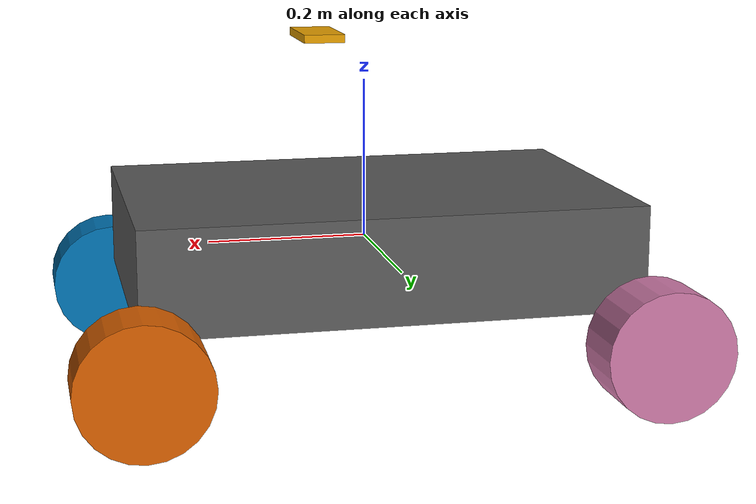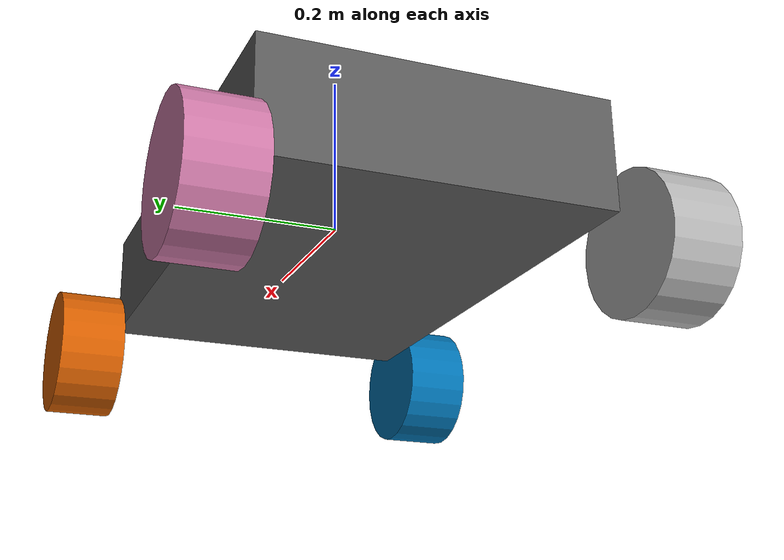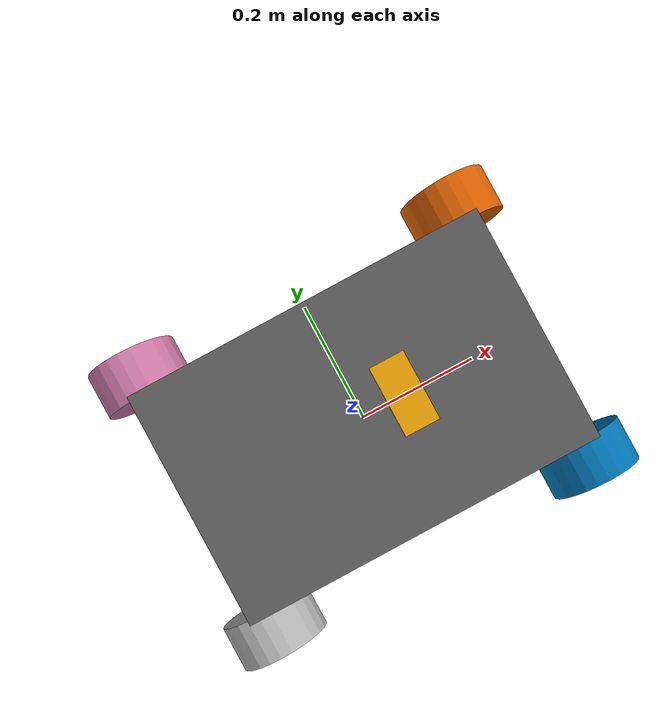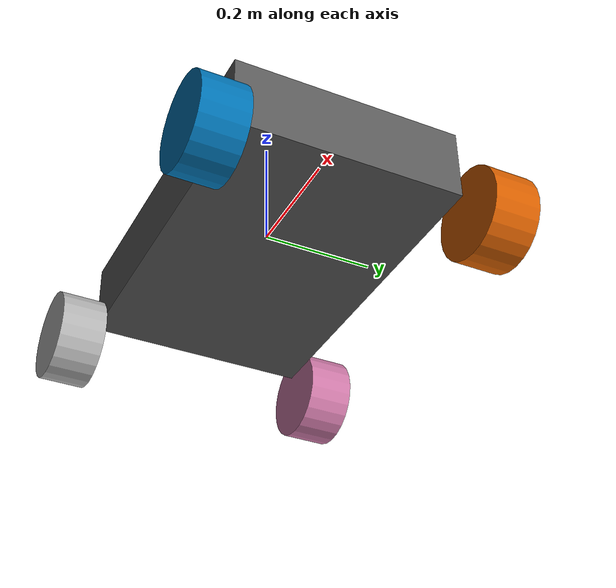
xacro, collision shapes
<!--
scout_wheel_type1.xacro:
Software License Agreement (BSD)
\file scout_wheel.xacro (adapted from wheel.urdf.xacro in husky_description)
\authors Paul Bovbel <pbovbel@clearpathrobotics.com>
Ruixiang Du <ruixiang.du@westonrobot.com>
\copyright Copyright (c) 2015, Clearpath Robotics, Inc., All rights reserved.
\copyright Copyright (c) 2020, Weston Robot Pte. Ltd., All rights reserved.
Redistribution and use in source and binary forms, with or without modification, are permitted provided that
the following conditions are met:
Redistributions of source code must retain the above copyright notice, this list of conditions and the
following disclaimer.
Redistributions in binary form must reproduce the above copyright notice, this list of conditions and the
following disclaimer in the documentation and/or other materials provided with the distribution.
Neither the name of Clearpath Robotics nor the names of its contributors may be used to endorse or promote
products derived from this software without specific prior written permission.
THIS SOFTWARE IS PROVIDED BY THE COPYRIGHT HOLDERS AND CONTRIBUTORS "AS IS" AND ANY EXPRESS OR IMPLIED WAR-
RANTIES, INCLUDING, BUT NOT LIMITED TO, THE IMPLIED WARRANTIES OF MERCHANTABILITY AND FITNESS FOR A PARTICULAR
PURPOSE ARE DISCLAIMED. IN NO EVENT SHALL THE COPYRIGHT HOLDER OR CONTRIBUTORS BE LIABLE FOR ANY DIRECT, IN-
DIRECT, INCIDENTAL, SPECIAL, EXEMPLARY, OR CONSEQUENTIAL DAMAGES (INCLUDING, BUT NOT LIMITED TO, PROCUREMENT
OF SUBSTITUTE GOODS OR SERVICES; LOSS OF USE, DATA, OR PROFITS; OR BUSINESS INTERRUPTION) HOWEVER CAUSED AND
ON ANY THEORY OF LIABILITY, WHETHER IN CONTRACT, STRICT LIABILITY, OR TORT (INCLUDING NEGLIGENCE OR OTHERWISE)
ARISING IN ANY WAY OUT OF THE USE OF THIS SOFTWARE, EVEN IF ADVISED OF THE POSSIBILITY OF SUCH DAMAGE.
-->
<?xml version="1.0"?>

<robot name="scout_mini_real"
    xmlns:xacro="http://ros.org/wiki/xacro">

    <xacro:arg name="robot_namespace" default="/" />

    <xacro:include filename="$(find scout_description)/urdf/scout_wheel_type1.xacro" />
    <xacro:include filename="$(find scout_description)/urdf/scout_wheel_type2.xacro" />
    <xacro:include filename="$(find scout_description)/urdf/gazebo_real.xacro" />

    <!-- Variables -->
    <xacro:property name="M_PI" value="3.14159"/>

    <!-- Vehicle Geometries - real Scout Mini values, see header -->
    <xacro:property name="base_x_size" value="0.612" />
    <xacro:property name="base_y_size" value="0.400" />  <!-- approximate, see header -->
    <xacro:property name="base_z_size" value="0.130" />

    <xacro:property name="wheelbase" value="0.615" />
    <xacro:property name="track" value="0.49" />
    <xacro:property name="wheel_vertical_offset" value="-0.100" />

    <xacro:property name="wheel_length" value="0.08" />
    <xacro:property name="wheel_radius" value="0.08" />

    <!-- Base link -->
    <link name="base_link">
        <visual>
            <origin xyz="0 0 0" rpy="0 0 0" />
            <geometry>
                <box size="${base_x_size} ${base_y_size} ${base_z_size}"/>
            </geometry>
            <material name="scout_body_gray">
                <color rgba="0.35 0.35 0.35 1.0"/>
            </material>
        </visual>
        <collision>
            <origin xyz="0 0 0" rpy="0 0 0" />
            <geometry>
                <box size="${base_x_size} ${base_y_size} ${base_z_size}"/>
            </geometry>
        </collision>
    </link>

    <link name="base_footprint"/>

    <joint name="base_footprint_joint" type="fixed">
        <origin xyz="0 0 ${wheel_vertical_offset - wheel_radius}" rpy="0 0 0" />
        <parent link="base_link" />
        <child link="base_footprint" />
    </joint>

    <!-- Inertia: solid-box approximation, mass = 24.5kg midpoint of confirmed
         23-26kg range minus 4x1.5kg placeholder wheel mass (matches
         scout_mini.urdf's own reasoning) = 18.5kg body -->
    <link name="inertial_link">
        <inertial>
            <mass value="18.5" />
            <origin xyz="0.0 0.0 0.0" />
            <inertia ixx="0.27272" ixy="0" ixz="0" iyy="0.60348" iyz="0" izz="0.82409" />
        </inertial>
    </link>

    <joint name="inertial_joint" type="fixed">
        <origin xyz="0 0 0" rpy="0 0 0" />
        <parent link="base_link" />
        <child link="inertial_link" />
    </joint>

    <!-- Scout wheel macros -->
    <!-- wheel labeled from 0 to 3, counter-clockwise, starting from front right wheel -->
    <xacro:scout_wheel_type1 wheel_prefix="front_right">
        <origin xyz="${wheelbase/2} ${-track/2} ${wheel_vertical_offset}" rpy="0 0 0" />
    </xacro:scout_wheel_type1>
    <xacro:scout_wheel_type2 wheel_prefix="front_left">
        <origin xyz="${wheelbase/2} ${track/2} ${wheel_vertical_offset}" rpy="0 0 0" />
    </xacro:scout_wheel_type2>
    <xacro:scout_wheel_type1 wheel_prefix="rear_left">
        <origin xyz="${-wheelbase/2} ${track/2} ${wheel_vertical_offset}" rpy="0 0 0" />
    </xacro:scout_wheel_type1>
    <xacro:scout_wheel_type2 wheel_prefix="rear_right">
        <origin xyz="${-wheelbase/2} ${-track/2} ${wheel_vertical_offset}" rpy="0 0 0" />
    </xacro:scout_wheel_type2>

</robot>

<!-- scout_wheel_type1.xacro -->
<robot xmlns:xacro="http://ros.org/wiki/xacro" name="scout_wheel">

    <xacro:macro name="scout_wheel_type1" params="wheel_prefix *joint_pose">
        <link name="${wheel_prefix}_wheel_link">
            <inertial>
                <mass value="8" />
                <origin xyz="0 0 0" />
                <inertia ixx="0.1171" ixy="0" ixz="0" iyy="0.1361" iyz="0" izz="0.1171" />
            </inertial>
            <visual>
                <origin xyz="0 0 0" rpy="0 0 0" />
                <geometry>
                    <mesh filename="file://$(find scout_description)/meshes/wheel_type1.dae" />
                </geometry>
            </visual>
            <collision>
                <origin xyz="0 0 0" rpy="${M_PI/2} 0 0" />
                <geometry>
                    <cylinder length="${wheel_length}" radius="${wheel_radius}" />
                </geometry>
                     <contact>
                         <ode>
                        <min_depth>0.001</min_depth>
                         </ode>
                    </contact>
            </collision>
        </link>

        <joint name="${wheel_prefix}_wheel" type="continuous">
            <parent link="base_link"/>
            <child link="${wheel_prefix}_wheel_link"/>
            <xacro:insert_block name="joint_pose"/>
            <axis xyz="0 -1 0" rpy="0 0 0" />
            <dynamics damping="0.0" friction="20"/>
        </joint>
    </xacro:macro>

</robot>

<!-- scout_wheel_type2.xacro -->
<robot xmlns:xacro="http://ros.org/wiki/xacro" name="scout_wheel">

    <xacro:macro name="scout_wheel_type2" params="wheel_prefix *joint_pose">
        <link name="${wheel_prefix}_wheel_link">
            <inertial>
                <mass value="8" />
                <origin xyz="0 0 0" />
                <inertia ixx="0.1171" ixy="0" ixz="0" iyy="0.1361" iyz="0" izz="0.1171" />
            </inertial>
            <visual>
                <origin xyz="0 0 0" rpy="0 0 0" />
                <geometry>
                    <mesh filename="file://$(find scout_description)/meshes/wheel_type1.dae" />
                </geometry>
            </visual>
            <collision>
                <origin xyz="0 0 0" rpy="${M_PI/2} 0 0" />
                <geometry>
                    <cylinder length="${wheel_length}" radius="${wheel_radius}" />
                </geometry>
                    <contact>
                         <ode>
                        <min_depth>0.001</min_depth>
                         </ode>
                    </contact>
            </collision>
        </link>

        <joint name="${wheel_prefix}_wheel" type="continuous">
            <parent link="base_link"/>
            <child link="${wheel_prefix}_wheel_link"/>
            <xacro:insert_block name="joint_pose"/>
            <axis xyz="0 1 0" rpy="0 0 0" />
            <dynamics damping="0.0" friction="20"/>
        </joint>
    </xacro:macro>

</robot>

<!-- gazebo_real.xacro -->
<robot xmlns:xacro="http://ros.org/wiki/xacro">

    <gazebo>
        <plugin filename="gz-sim-sensors-system" name="gz::sim::systems::Sensors">
            <render_engine>ogre2</render_engine>
        </plugin>
        <plugin filename="gz-sim-diff-drive-system" name="gz::sim::systems::DiffDrive">
            <left_joint>front_left_wheel</left_joint>
            <left_joint>rear_left_wheel</left_joint>
            <right_joint>front_right_wheel</right_joint>
            <right_joint>rear_right_wheel</right_joint>
            <wheel_separation>0.576</wheel_separation>
            <wheel_radius>0.08</wheel_radius>
            <topic>cmd_vel</topic>
            <odom_publish_frequency>50</odom_publish_frequency>
            <odom_topic>odom</odom_topic>
            <frame_id>odom</frame_id>
            <child_frame_id>base_link</child_frame_id>
            <max_linear_acceleration>1.0</max_linear_acceleration>
            <min_linear_acceleration>-1.0</min_linear_acceleration>
            <max_angular_acceleration>1.0</max_angular_acceleration>
            <min_angular_acceleration>-1.0</min_angular_acceleration>
            <max_wheel_torque>20</max_wheel_torque>
        </plugin>
        <plugin filename="gz-sim-odometry-publisher-system" name="gz::sim::systems::OdometryPublisher">
            <odom_frame>ground_truth_odom</odom_frame>
            <robot_base_frame>base_link</robot_base_frame>
            <odom_publish_frequency>50</odom_publish_frequency>
            <odom_topic>ground_truth_odom</odom_topic>
            <dimensions>2</dimensions>
            <tf_topic>tf</tf_topic>
        </plugin>
        <plugin filename="gz-sim-joint-state-publisher-system" name="gz::sim::systems::JointStatePublisher">
            <topic>joint_states</topic>
        </plugin>
    </gazebo>

    <link name="zed_x_camera">
        <collision>
            <origin xyz="0 0 0" rpy="0 0 0"/>
            <geometry><box size="0.05 0.1 0.01"/></geometry>
        </collision>
        <inertial>
            <origin xyz="0 0 0" rpy="0 0 0"/>
            <mass value="0.01"/>
            <inertia ixx="0.01" ixy="0" ixz="0" iyy="0.01" iyz="0" izz="0.01"/>
        </inertial>
    </link>

    <joint name="base_to_zed_x_camera" type="fixed">
        <parent link="base_link"/>
        <child link="zed_x_camera"/>
        <origin xyz="0.06 0.0 0.257" rpy="0 0 0"/>
    </joint>

    <gazebo reference="base_to_zed_x_camera">
        <preserveFixedJoint>true</preserveFixedJoint>
    </gazebo>

    <gazebo reference="zed_x_camera">
        <sensor name="zed_x_camera" type="depth_camera">
            <always_on>1</always_on>
            <update_rate>15</update_rate>
            <visualize>true</visualize>
            <topic>zed_x_camera</topic>
            <camera>
                <horizontal_fov>1.7582794098833934</horizontal_fov>
                <image>
                    <width>240</width>
                    <height>150</height>
                    <format>R_FLOAT32</format>
                </image>
                <clip><near>0.3</near><far>20.0</far></clip>
                <optical_frame_id>zed_x_camera</optical_frame_id>
                <depth_camera><output>depths</output></depth_camera>
            </camera>
        </sensor>
    </gazebo>

</robot>
